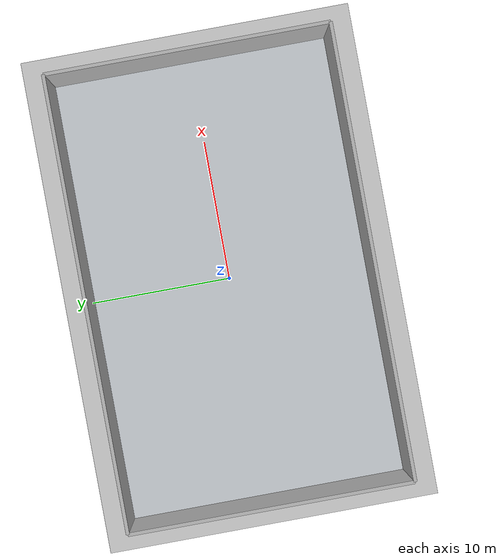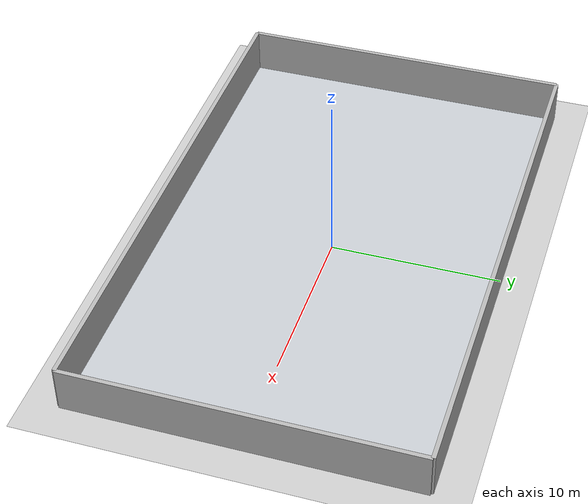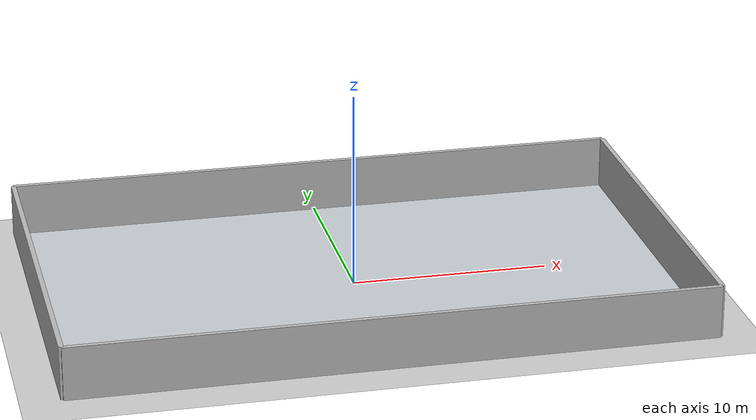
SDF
<?xml version="1.0"?>
<sdf version="1.7">
  <world name="dynamic_nav_airport">
    <include><uri>model://sun</uri></include>
    <include><uri>model://ground_plane</uri></include>
    <model name="airport_floor"><static>true</static><link name="floor"><visual name="visual"><geometry><box><size>32 20 0.03</size></box></geometry><material><diffuse>0.78 0.80 0.82 1</diffuse></material></visual><collision name="collision"><geometry><box><size>32 20 0.03</size></box></geometry></collision></link></model>
    <model name="terminal_boundaries"><static>true</static><link name="walls">
      <visual name="north"><pose>0 10 1.35 0 0 0</pose><geometry><box><size>32 0.25 2.7</size></box></geometry></visual><collision name="north_col"><pose>0 10 1.35 0 0 0</pose><geometry><box><size>32 0.25 2.7</size></box></geometry></collision>
      <visual name="south"><pose>0 -10 1.35 0 0 0</pose><geometry><box><size>32 0.25 2.7</size></box></geometry></visual><collision name="south_col"><pose>0 -10 1.35 0 0 0</pose><geometry><box><size>32 0.25 2.7</size></box></geometry></collision>
      <visual name="east"><pose>16 0 1.35 0 0 0</pose><geometry><box><size>0.25 20 2.7</size></box></geometry></visual><collision name="east_col"><pose>16 0 1.35 0 0 0</pose><geometry><box><size>0.25 20 2.7</size></box></geometry></collision>
      <visual name="west"><pose>-16 0 1.35 0 0 0</pose><geometry><box><size>0.25 20 2.7</size></box></geometry></visual><collision name="west_col"><pose>-16 0 1.35 0 0 0</pose><geometry><box><size>0.25 20 2.7</size></box></geometry></collision>
    </link></model>
  </world>
</sdf>
